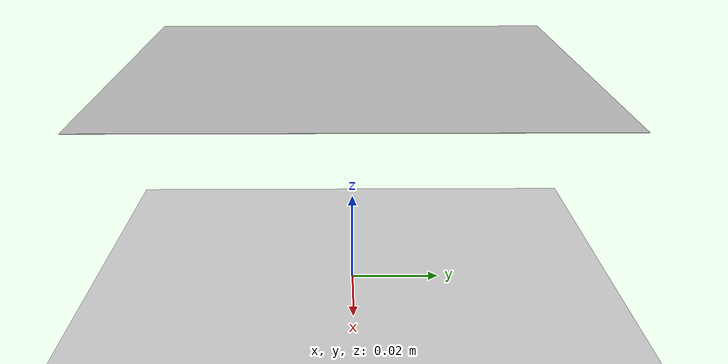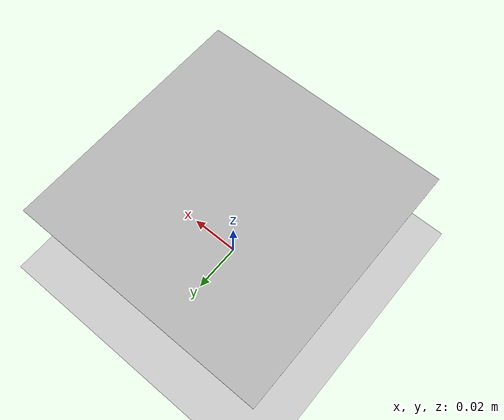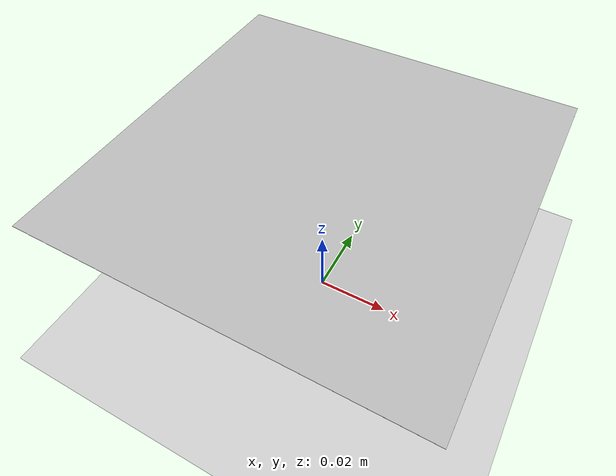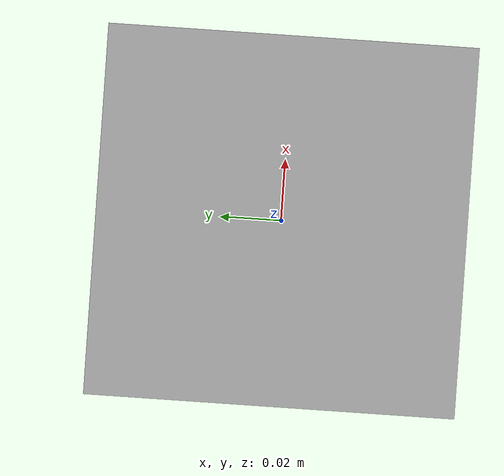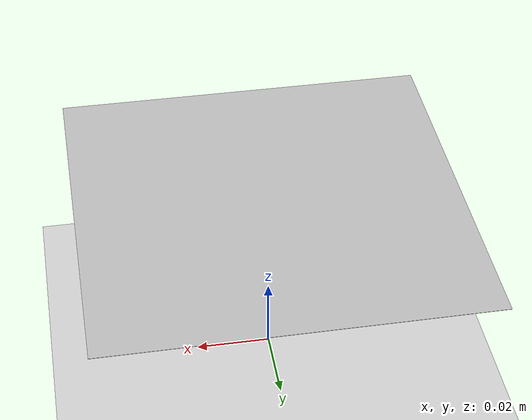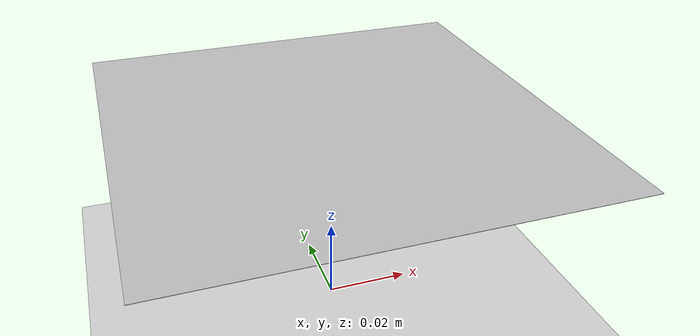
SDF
<?xml version="1.0" ?>
<sdf version="1.5">
  <world name="default">
    <!-- A global light source -->
    <include>
      <uri>model://sun</uri>
    </include>
    <!-- A ground plane -->
    <include>
      <uri>model://ground_plane</uri>
    </include>
    <include>
      <uri>model://asphalt_plane</uri>
    </include>
    <physics name='default_physics' default='0' type='ode'>
      <gravity>0 0 -9.8066</gravity>
      <ode>
        <solver>
          <type>quick</type>
          <iters>10</iters>
          <sor>1.3</sor>
          <use_dynamic_moi_rescaling>0</use_dynamic_moi_rescaling>
        </solver>
        <constraints>
          <cfm>0</cfm>
          <erp>0.2</erp>
          <contact_max_correcting_vel>100</contact_max_correcting_vel>
          <contact_surface_layer>0.001</contact_surface_layer>
        </constraints>
      </ode>
      <max_step_size>0.004</max_step_size>
      <real_time_factor>1</real_time_factor>
      <real_time_update_rate>250</real_time_update_rate>
      <magnetic_field>6.0e-6 2.3e-5 -4.2e-5</magnetic_field>
    </physics>
    <model name="aruco_marker">
      <include>
      <uri>model://aruco_marker</uri>
      <pose>0 0 0.05 0 0 0</pose>
      </include>
    </model>
  </world>
</sdf>

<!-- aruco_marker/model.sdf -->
<sdf version="1.4"> <model name="aruco_marker">   <static>true</static>
    <link name="link">
      <collision name="collision">
        <geometry>
          <plane>
            <normal>0 0 1</normal>
            <size>0.1 0.1</size>
          </plane>
        </geometry>
        <surface>
          <friction>
            <ode>
              <mu>100</mu>
              <mu2>50</mu2>
            </ode>
          </friction>
        </surface>
      </collision>
      <visual name="visual">
        <cast_shadows>false</cast_shadows>
        <geometry>
          <plane>
            <normal>0 0 1</normal>
            <size>0.1 0.1</size>    </plane>    <mesh>
        <uri>model://aruco_marker/materials/textures/aruco_marker.dae</uri>
          </mesh>
        </geometry>
        <material>
          <script>
            <uri>model://aruco_marker/materials/scripts/</uri>
            <uri>model://aruco_marker/materials/textures/</uri>
            <name>ArucoMarker/Image</name>
          </script>
        </material>
      </visual>
    </link>   </model> </sdf>
